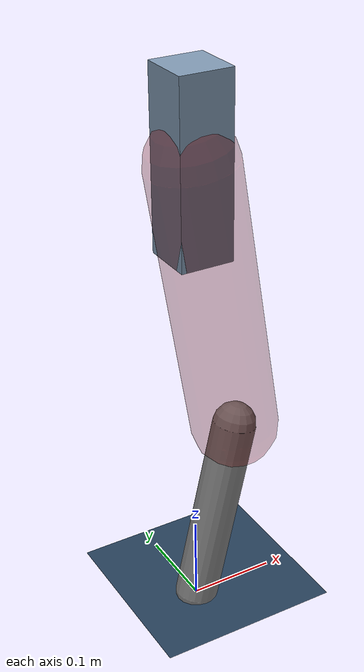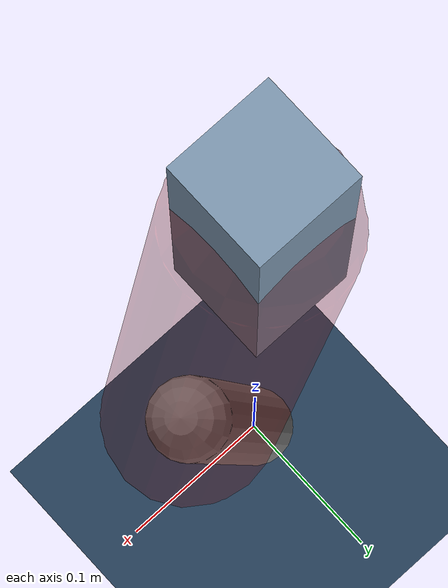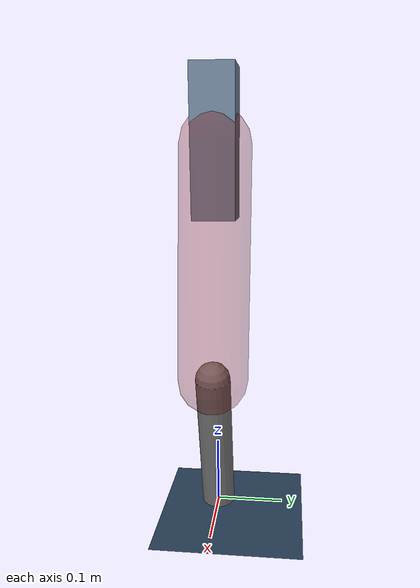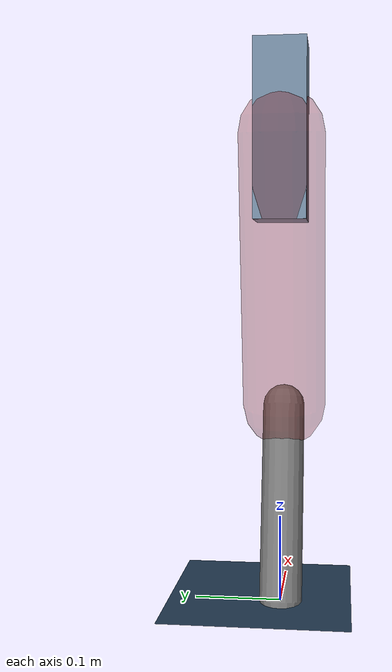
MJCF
<mujoco model="Hopper2D">
	<compiler inertiafromgeom="true" angle="radian" />
	<option timestep="0.001" integrator="implicit" cone="elliptic" solver="Newton" tolerance="1e-10" />

	<default>
		<geom contype="1" conaffinity="1" condim="3" friction="2 0.005 0.0001" solref="0.005 1" />
		<joint limited="true" damping="0.1" />
	</default>

	<asset>
		<texture name="skybox" type="skybox" builtin="gradient" rgb1=".4 .6 .8" rgb2="0 0 0" width="800" height="800" />
		<texture name="grid" type="2d" builtin="checker" rgb1=".1 .2 .3" rgb2=".2 .3 .4" width="300" height="300" mark="edge" markrgb=".2 .3 .4" />
		<material name="ground" texture="grid" texrepeat="1 1" texuniform="true" reflectance="0.1" />
		<material name="leg" rgba="0.5 0.6 0.7 1" />
	</asset>

	<worldbody>

		<geom name="floor" type="plane" size="5 5 0.25" material="ground" />

		<light directional="false" diffuse="0.8 0.8 0.8" specular="0.3 0.3 0.3" pos="0 0 2" dir="0 0 -1" />
		<light mode="targetbodycom" target="base" directional="false" diffuse="0.8 0.8 0.8" specular="0.3 0.3 0.3" pos="0 0 2" dir="0 0 -1" />

		<camera name="fixed" pos="0 -2 1" xyaxes="1 0 0 0 0 1" />
		<camera name="tracking" mode="trackcom" pos="0 -3 1" />

		<body name="root" pos="0 0 0.5436344672441582">
			<joint name="slide_x" type="slide" axis="1 0 0" range="-100 100" />
			<joint name="slide_z" type="slide" axis="0 0 1" range="0 10" />

			<body name="base" pos="0 0 0">
				<geom name="torso" type="box" size="0.03 0.03 0.1" mass="2.0989999999999998" material="leg" />

				<body name="link1" pos="0 0 0" euler="0 1.410586296934714 0">
					<joint type="hinge" axis="0 -1 0" pos="0 0 0" name="hinge1" limited="true" range="-3.14 3.14" stiffness="0" damping="0.1" />
					<geom name="thigh" type="capsule" fromto="0 0 0 0.3234512263399071 0 0" size="0.05" rgba="0.5 0 0 0.3" mass="1.05276343375174" />

					<body name="link2" pos="0.3234512263399071 0 0" euler="0 0.38629487820205866 0">
						<joint type="hinge" axis="0 -1 0" pos="0 0 0" name="hinge2" limited="true" range="-3.14 3.14" stiffness="0" damping="0.1" />
						<geom name="shank" type="capsule" fromto="0 0 0 0.2301832409042511 0 0" size="0.025" mass="0.4261465927234009" />

					</body>
				</body>
			</body>
		</body>
	</worldbody>

	<actuator>
		<motor name="torque1" joint="hinge1" ctrlrange="-34.581155770015656 34.581155770015656" ctrllimited="true" gear="1" />
		<motor name="torque2" joint="hinge2" ctrlrange="-89.8429686241468 89.8429686241468" ctrllimited="true" gear="1" />
	</actuator>
</mujoco>
